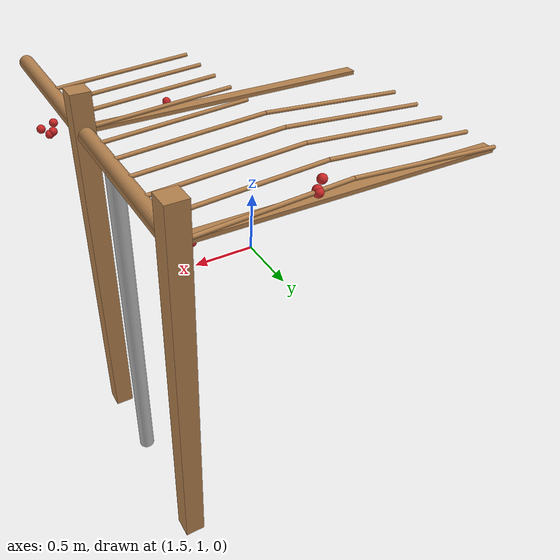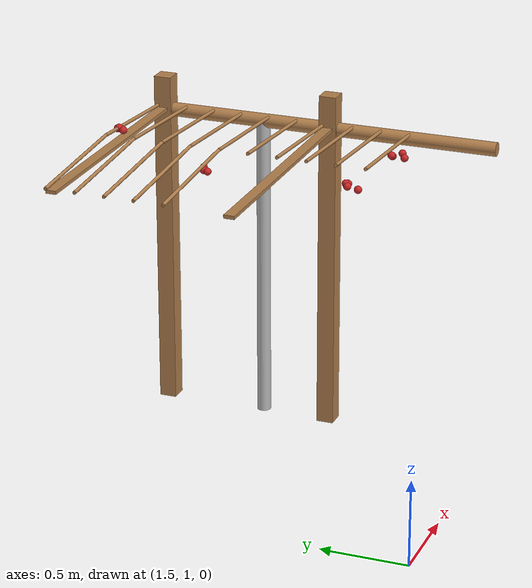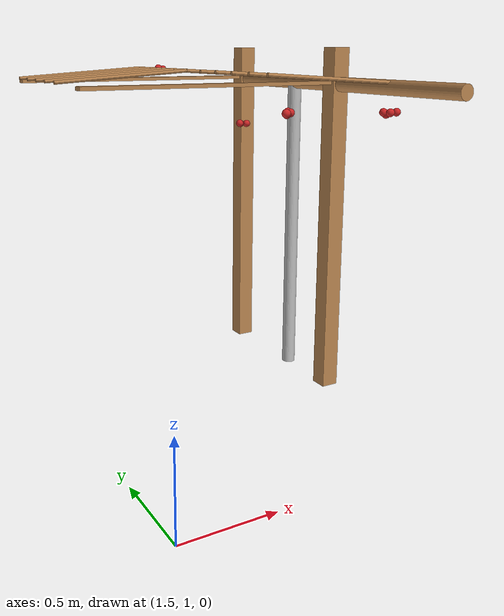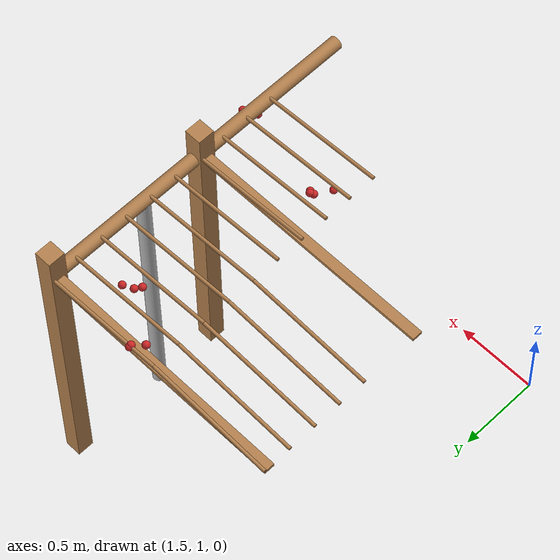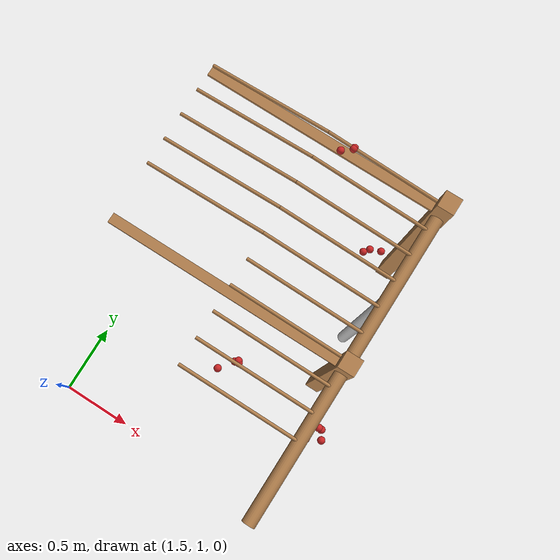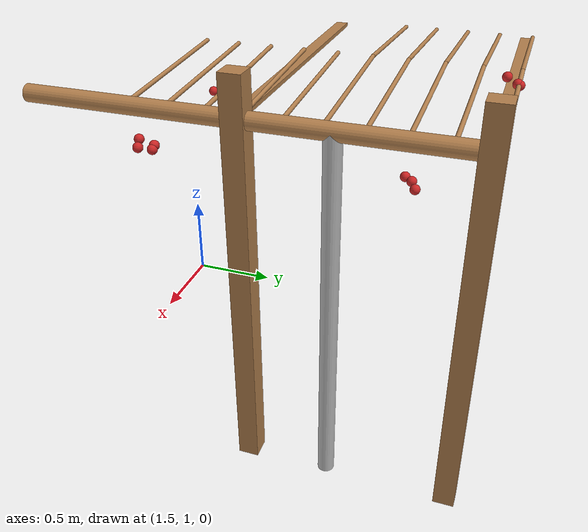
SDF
<sdf version="1.4">
 <model name="pergola">
  <include><name>post_24</name><pose>3.0 2.0 0 0 0 0</pose><uri>model://post</uri></include>
  <include><name>post_25</name><pose>3.0 3.0 0 0 0 0</pose><uri>model://post</uri></include>
  <link name="beam_13">
   <pose>2.25 2.0 1.81 0 0 0</pose>
   <collision name="collision"><geometry><box><size>1.5 0.06 0.02</size></box></geometry></collision>
   <visual name="visual">
    <geometry><box><size>1.5 0.06 0.02</size></box></geometry>
    <material><script><name>Gazebo/Wood</name></script></material>
   </visual>
   <inertial>
    <mass>5</mass>
    <inertia>
     <ixx>0.0016666666666666668</ixx>
     <ixy>0.0</ixy>
     <ixz>0.0</ixz>
     <iyy>0.9390000000000001</iyy>
     <iyz>0.0</iyz>
     <izz>0.9376666666666665</izz>
    </inertia>
   </inertial>
  </link>
  <link name="beam_14">
   <pose>2.25 3.0 1.81 0 0 0</pose>
   <collision name="collision"><geometry><box><size>1.5 0.06 0.02</size></box></geometry></collision>
   <visual name="visual">
    <geometry><box><size>1.5 0.06 0.02</size></box></geometry>
    <material><script><name>Gazebo/Wood</name></script></material>
   </visual>
   <inertial>
    <mass>5</mass>
    <inertia>
     <ixx>0.0016666666666666668</ixx>
     <ixy>0.0</ixy>
     <ixz>0.0</ixz>
     <iyy>0.9390000000000001</iyy>
     <iyz>0.0</iyz>
     <izz>0.9376666666666665</izz>
    </inertia>
   </inertial>
  </link>
  <include><name>tree_22</name><pose>3.0 2.4 0 0 0 0</pose><uri>model://tree_trunk</uri></include>
  <link name="baseBranch_21">
   <pose>3.0 1.5 1.8 1.5707963267948966 0 0</pose>
   <collision name="collision">
    <geometry><cylinder><radius>0.04</radius><length>0.94</length></cylinder></geometry>
   </collision>
   <visual name="visual">
    <geometry><cylinder><radius>0.04</radius><length>0.94</length></cylinder></geometry>
    <material><script><name>Gazebo/WoodFloor</name></script></material>
   </visual>
   <inertial>
    <mass>10</mass>
    <inertia>
     <ixx>0.7403333333333334</ixx>
     <ixy>0.0</ixy>
     <ixz>0.0</ixz>
     <iyy>0.7403333333333334</iyy>
     <iyz>0.0</iyz>
     <izz>0.008</izz>
    </inertia>
   </inertial>
  </link>
  <link name="baseBranch_22">
   <pose>3.0 2.5 1.8 1.5707963267948966 0 0</pose>
   <collision name="collision">
    <geometry><cylinder><radius>0.04</radius><length>0.94</length></cylinder></geometry>
   </collision>
   <visual name="visual">
    <geometry><cylinder><radius>0.04</radius><length>0.94</length></cylinder></geometry>
    <material><script><name>Gazebo/WoodFloor</name></script></material>
   </visual>
   <inertial>
    <mass>10</mass>
    <inertia>
     <ixx>0.7403333333333334</ixx>
     <ixy>0.0</ixy>
     <ixz>0.0</ixz>
     <iyy>0.7403333333333334</iyy>
     <iyz>0.0</iyz>
     <izz>0.008</izz>
    </inertia>
   </inertial>
  </link>
  <link name="vine_139">
   <pose>2.625 1.53 1.85 0 -1.5042281630190728 0</pose>
   <collision name="collision">
    <geometry><cylinder><radius>0.01</radius><length>0.7516648189186453</length></cylinder></geometry>
   </collision>
   <visual name="visual">
    <geometry><cylinder><radius>0.01</radius><length>0.7516648189186453</length></cylinder></geometry>
    <material><script><name>Gazebo/WoodFloor</name></script></material>
   </visual>
   <inertial>
    <mass>5</mass>
    <inertia>
     <ixx>0.23554166666666657</ixx>
     <ixy>0.0</ixy>
     <ixz>0.0</ixz>
     <iyy>0.23554166666666657</iyy>
     <iyz>0.0</iyz>
     <izz>0.00025</izz>
    </inertia>
   </inertial>
  </link>
  <link name="vine_141">
   <pose>2.625 1.6966666666666665 1.85 0 -1.5042281630190728 0</pose>
   <collision name="collision">
    <geometry><cylinder><radius>0.01</radius><length>0.7516648189186453</length></cylinder></geometry>
   </collision>
   <visual name="visual">
    <geometry><cylinder><radius>0.01</radius><length>0.7516648189186453</length></cylinder></geometry>
    <material><script><name>Gazebo/WoodFloor</name></script></material>
   </visual>
   <inertial>
    <mass>5</mass>
    <inertia>
     <ixx>0.23554166666666657</ixx>
     <ixy>0.0</ixy>
     <ixz>0.0</ixz>
     <iyy>0.23554166666666657</iyy>
     <iyz>0.0</iyz>
     <izz>0.00025</izz>
    </inertia>
   </inertial>
  </link>
  <link name="vine_143">
   <pose>2.625 1.8633333333333333 1.85 0 -1.5042281630190728 0</pose>
   <collision name="collision">
    <geometry><cylinder><radius>0.01</radius><length>0.7516648189186453</length></cylinder></geometry>
   </collision>
   <visual name="visual">
    <geometry><cylinder><radius>0.01</radius><length>0.7516648189186453</length></cylinder></geometry>
    <material><script><name>Gazebo/WoodFloor</name></script></material>
   </visual>
   <inertial>
    <mass>5</mass>
    <inertia>
     <ixx>0.23554166666666657</ixx>
     <ixy>0.0</ixy>
     <ixz>0.0</ixz>
     <iyy>0.23554166666666657</iyy>
     <iyz>0.0</iyz>
     <izz>0.00025</izz>
    </inertia>
   </inertial>
  </link>
  <link name="vine_145">
   <pose>2.625 2.03 1.85 0 -1.5042281630190728 0</pose>
   <collision name="collision">
    <geometry><cylinder><radius>0.01</radius><length>0.7516648189186453</length></cylinder></geometry>
   </collision>
   <visual name="visual">
    <geometry><cylinder><radius>0.01</radius><length>0.7516648189186453</length></cylinder></geometry>
    <material><script><name>Gazebo/WoodFloor</name></script></material>
   </visual>
   <inertial>
    <mass>5</mass>
    <inertia>
     <ixx>0.23554166666666657</ixx>
     <ixy>0.0</ixy>
     <ixz>0.0</ixz>
     <iyy>0.23554166666666657</iyy>
     <iyz>0.0</iyz>
     <izz>0.00025</izz>
    </inertia>
   </inertial>
  </link>
  <link name="vine_147">
   <pose>2.625 2.1966666666666663 1.85 0 -1.5042281630190728 0</pose>
   <collision name="collision">
    <geometry><cylinder><radius>0.01</radius><length>0.7516648189186453</length></cylinder></geometry>
   </collision>
   <visual name="visual">
    <geometry><cylinder><radius>0.01</radius><length>0.7516648189186453</length></cylinder></geometry>
    <material><script><name>Gazebo/WoodFloor</name></script></material>
   </visual>
   <inertial>
    <mass>5</mass>
    <inertia>
     <ixx>0.23554166666666657</ixx>
     <ixy>0.0</ixy>
     <ixz>0.0</ixz>
     <iyy>0.23554166666666657</iyy>
     <iyz>0.0</iyz>
     <izz>0.00025</izz>
    </inertia>
   </inertial>
  </link>
  <link name="vine_148">
   <pose>1.875 2.363333333333333 1.85 0 1.5042281630190728 0</pose>
   <collision name="collision">
    <geometry><cylinder><radius>0.01</radius><length>0.7516648189186453</length></cylinder></geometry>
   </collision>
   <visual name="visual">
    <geometry><cylinder><radius>0.01</radius><length>0.7516648189186453</length></cylinder></geometry>
    <material><script><name>Gazebo/WoodFloor</name></script></material>
   </visual>
   <inertial>
    <mass>5</mass>
    <inertia>
     <ixx>0.23554166666666657</ixx>
     <ixy>0.0</ixy>
     <ixz>0.0</ixz>
     <iyy>0.23554166666666657</iyy>
     <iyz>0.0</iyz>
     <izz>0.00025</izz>
    </inertia>
   </inertial>
  </link>
  <link name="vine_149">
   <pose>2.625 2.363333333333333 1.85 0 -1.5042281630190728 0</pose>
   <collision name="collision">
    <geometry><cylinder><radius>0.01</radius><length>0.7516648189186453</length></cylinder></geometry>
   </collision>
   <visual name="visual">
    <geometry><cylinder><radius>0.01</radius><length>0.7516648189186453</length></cylinder></geometry>
    <material><script><name>Gazebo/WoodFloor</name></script></material>
   </visual>
   <inertial>
    <mass>5</mass>
    <inertia>
     <ixx>0.23554166666666657</ixx>
     <ixy>0.0</ixy>
     <ixz>0.0</ixz>
     <iyy>0.23554166666666657</iyy>
     <iyz>0.0</iyz>
     <izz>0.00025</izz>
    </inertia>
   </inertial>
  </link>
  <link name="vine_150">
   <pose>1.875 2.53 1.85 0 1.5042281630190728 0</pose>
   <collision name="collision">
    <geometry><cylinder><radius>0.01</radius><length>0.7516648189186453</length></cylinder></geometry>
   </collision>
   <visual name="visual">
    <geometry><cylinder><radius>0.01</radius><length>0.7516648189186453</length></cylinder></geometry>
    <material><script><name>Gazebo/WoodFloor</name></script></material>
   </visual>
   <inertial>
    <mass>5</mass>
    <inertia>
     <ixx>0.23554166666666657</ixx>
     <ixy>0.0</ixy>
     <ixz>0.0</ixz>
     <iyy>0.23554166666666657</iyy>
     <iyz>0.0</iyz>
     <izz>0.00025</izz>
    </inertia>
   </inertial>
  </link>
  <link name="vine_151">
   <pose>2.625 2.53 1.85 0 -1.5042281630190728 0</pose>
   <collision name="collision">
    <geometry><cylinder><radius>0.01</radius><length>0.7516648189186453</length></cylinder></geometry>
   </collision>
   <visual name="visual">
    <geometry><cylinder><radius>0.01</radius><length>0.7516648189186453</length></cylinder></geometry>
    <material><script><name>Gazebo/WoodFloor</name></script></material>
   </visual>
   <inertial>
    <mass>5</mass>
    <inertia>
     <ixx>0.23554166666666657</ixx>
     <ixy>0.0</ixy>
     <ixz>0.0</ixz>
     <iyy>0.23554166666666657</iyy>
     <iyz>0.0</iyz>
     <izz>0.00025</izz>
    </inertia>
   </inertial>
  </link>
  <link name="vine_152">
   <pose>1.875 2.6966666666666663 1.85 0 1.5042281630190728 0</pose>
   <collision name="collision">
    <geometry><cylinder><radius>0.01</radius><length>0.7516648189186453</length></cylinder></geometry>
   </collision>
   <visual name="visual">
    <geometry><cylinder><radius>0.01</radius><length>0.7516648189186453</length></cylinder></geometry>
    <material><script><name>Gazebo/WoodFloor</name></script></material>
   </visual>
   <inertial>
    <mass>5</mass>
    <inertia>
     <ixx>0.23554166666666657</ixx>
     <ixy>0.0</ixy>
     <ixz>0.0</ixz>
     <iyy>0.23554166666666657</iyy>
     <iyz>0.0</iyz>
     <izz>0.00025</izz>
    </inertia>
   </inertial>
  </link>
  <link name="vine_153">
   <pose>2.625 2.6966666666666663 1.85 0 -1.5042281630190728 0</pose>
   <collision name="collision">
    <geometry><cylinder><radius>0.01</radius><length>0.7516648189186453</length></cylinder></geometry>
   </collision>
   <visual name="visual">
    <geometry><cylinder><radius>0.01</radius><length>0.7516648189186453</length></cylinder></geometry>
    <material><script><name>Gazebo/WoodFloor</name></script></material>
   </visual>
   <inertial>
    <mass>5</mass>
    <inertia>
     <ixx>0.23554166666666657</ixx>
     <ixy>0.0</ixy>
     <ixz>0.0</ixz>
     <iyy>0.23554166666666657</iyy>
     <iyz>0.0</iyz>
     <izz>0.00025</izz>
    </inertia>
   </inertial>
  </link>
  <link name="vine_154">
   <pose>1.875 2.863333333333333 1.85 0 1.5042281630190728 0</pose>
   <collision name="collision">
    <geometry><cylinder><radius>0.01</radius><length>0.7516648189186453</length></cylinder></geometry>
   </collision>
   <visual name="visual">
    <geometry><cylinder><radius>0.01</radius><length>0.7516648189186453</length></cylinder></geometry>
    <material><script><name>Gazebo/WoodFloor</name></script></material>
   </visual>
   <inertial>
    <mass>5</mass>
    <inertia>
     <ixx>0.23554166666666657</ixx>
     <ixy>0.0</ixy>
     <ixz>0.0</ixz>
     <iyy>0.23554166666666657</iyy>
     <iyz>0.0</iyz>
     <izz>0.00025</izz>
    </inertia>
   </inertial>
  </link>
  <link name="vine_155">
   <pose>2.625 2.863333333333333 1.85 0 -1.5042281630190728 0</pose>
   <collision name="collision">
    <geometry><cylinder><radius>0.01</radius><length>0.7516648189186453</length></cylinder></geometry>
   </collision>
   <visual name="visual">
    <geometry><cylinder><radius>0.01</radius><length>0.7516648189186453</length></cylinder></geometry>
    <material><script><name>Gazebo/WoodFloor</name></script></material>
   </visual>
   <inertial>
    <mass>5</mass>
    <inertia>
     <ixx>0.23554166666666657</ixx>
     <ixy>0.0</ixy>
     <ixz>0.0</ixz>
     <iyy>0.23554166666666657</iyy>
     <iyz>0.0</iyz>
     <izz>0.00025</izz>
    </inertia>
   </inertial>
  </link>
  <link name="vine_156">
   <pose>1.875 3.03 1.85 0 1.5042281630190728 0</pose>
   <collision name="collision">
    <geometry><cylinder><radius>0.01</radius><length>0.7516648189186453</length></cylinder></geometry>
   </collision>
   <visual name="visual">
    <geometry><cylinder><radius>0.01</radius><length>0.7516648189186453</length></cylinder></geometry>
    <material><script><name>Gazebo/WoodFloor</name></script></material>
   </visual>
   <inertial>
    <mass>5</mass>
    <inertia>
     <ixx>0.23554166666666657</ixx>
     <ixy>0.0</ixy>
     <ixz>0.0</ixz>
     <iyy>0.23554166666666657</iyy>
     <iyz>0.0</iyz>
     <izz>0.00025</izz>
    </inertia>
   </inertial>
  </link>
  <link name="vine_157">
   <pose>2.625 3.03 1.85 0 -1.5042281630190728 0</pose>
   <collision name="collision">
    <geometry><cylinder><radius>0.01</radius><length>0.7516648189186453</length></cylinder></geometry>
   </collision>
   <visual name="visual">
    <geometry><cylinder><radius>0.01</radius><length>0.7516648189186453</length></cylinder></geometry>
    <material><script><name>Gazebo/WoodFloor</name></script></material>
   </visual>
   <inertial>
    <mass>5</mass>
    <inertia>
     <ixx>0.23554166666666657</ixx>
     <ixy>0.0</ixy>
     <ixz>0.0</ixz>
     <iyy>0.23554166666666657</iyy>
     <iyz>0.0</iyz>
     <izz>0.00025</izz>
    </inertia>
   </inertial>
  </link>
  <link name="fruit_16">
   <pose>3.0307642870582745 1.5694179181709313 1.6701648570160226 0 0 0</pose>
   <collision name="fruit_collision_16"><geometry><sphere><radius>0.022</radius></sphere></geometry></collision>
   <visual name="visual">
    <geometry><sphere><radius>0.022</radius></sphere></geometry>
    <material><script><name>Gazebo/Red</name></script></material>
   </visual>
   <inertial>
    <mass>0.05</mass>
    <inertia>
     <ixx>9.679999999999999e-06</ixx>
     <ixy>0.0</ixy>
     <ixz>0.0</ixz>
     <iyy>9.679999999999999e-06</iyy>
     <iyz>0.0</iyz>
     <izz>9.679999999999999e-06</izz>
    </inertia>
   </inertial>
   <sensor name="fruit_contact_16" type="contact">
    <contact><collision>fruit_collision_16</collision></contact>
   </sensor>
  </link>
  <link name="fruit_58">
   <pose>2.425800161514853 1.6310729344887276 1.6852335047467608 0 0 0</pose>
   <collision name="fruit_collision_58"><geometry><sphere><radius>0.022</radius></sphere></geometry></collision>
   <visual name="visual">
    <geometry><sphere><radius>0.022</radius></sphere></geometry>
    <material><script><name>Gazebo/Red</name></script></material>
   </visual>
   <inertial>
    <mass>0.05</mass>
    <inertia>
     <ixx>9.679999999999999e-06</ixx>
     <ixy>0.0</ixy>
     <ixz>0.0</ixz>
     <iyy>9.679999999999999e-06</iyy>
     <iyz>0.0</iyz>
     <izz>9.679999999999999e-06</izz>
    </inertia>
   </inertial>
   <sensor name="fruit_contact_58" type="contact">
    <contact><collision>fruit_collision_58</collision></contact>
   </sensor>
  </link>
  <link name="fruit_78">
   <pose>2.761052858263131 2.6456080460175775 1.5406224651800757 0 0 0</pose>
   <collision name="fruit_collision_78"><geometry><sphere><radius>0.022</radius></sphere></geometry></collision>
   <visual name="visual">
    <geometry><sphere><radius>0.022</radius></sphere></geometry>
    <material><script><name>Gazebo/Red</name></script></material>
   </visual>
   <inertial>
    <mass>0.05</mass>
    <inertia>
     <ixx>9.679999999999999e-06</ixx>
     <ixy>0.0</ixy>
     <ixz>0.0</ixz>
     <iyy>9.679999999999999e-06</iyy>
     <iyz>0.0</iyz>
     <izz>9.679999999999999e-06</izz>
    </inertia>
   </inertial>
   <sensor name="fruit_contact_78" type="contact">
    <contact><collision>fruit_collision_78</collision></contact>
   </sensor>
  </link>
  <link name="fruit_105">
   <pose>2.359961483585595 2.9755968818752825 1.8755498275619278 0 0 0</pose>
   <collision name="fruit_collision_105"><geometry><sphere><radius>0.022</radius></sphere></geometry></collision>
   <visual name="visual">
    <geometry><sphere><radius>0.022</radius></sphere></geometry>
    <material><script><name>Gazebo/Red</name></script></material>
   </visual>
   <inertial>
    <mass>0.05</mass>
    <inertia>
     <ixx>9.679999999999999e-06</ixx>
     <ixy>0.0</ixy>
     <ixz>0.0</ixz>
     <iyy>9.679999999999999e-06</iyy>
     <iyz>0.0</iyz>
     <izz>9.679999999999999e-06</izz>
    </inertia>
   </inertial>
   <sensor name="fruit_contact_105" type="contact">
    <contact><collision>fruit_collision_105</collision></contact>
   </sensor>
  </link>
  <link name="fruit_125">
   <pose>2.786097098726361 2.6792870565482176 1.535554077734939 0 0 0</pose>
   <collision name="fruit_collision_125"><geometry><sphere><radius>0.022</radius></sphere></geometry></collision>
   <visual name="visual">
    <geometry><sphere><radius>0.022</radius></sphere></geometry>
    <material><script><name>Gazebo/Red</name></script></material>
   </visual>
   <inertial>
    <mass>0.05</mass>
    <inertia>
     <ixx>9.679999999999999e-06</ixx>
     <ixy>0.0</ixy>
     <ixz>0.0</ixz>
     <iyy>9.679999999999999e-06</iyy>
     <iyz>0.0</iyz>
     <izz>9.679999999999999e-06</izz>
    </inertia>
   </inertial>
   <sensor name="fruit_contact_125" type="contact">
    <contact><collision>fruit_collision_125</collision></contact>
   </sensor>
  </link>
  <link name="fruit_149">
   <pose>3.0594222670980638 1.6555994452760607 1.6651917949028847 0 0 0</pose>
   <collision name="fruit_collision_149"><geometry><sphere><radius>0.022</radius></sphere></geometry></collision>
   <visual name="visual">
    <geometry><sphere><radius>0.022</radius></sphere></geometry>
    <material><script><name>Gazebo/Red</name></script></material>
   </visual>
   <inertial>
    <mass>0.05</mass>
    <inertia>
     <ixx>9.679999999999999e-06</ixx>
     <ixy>0.0</ixy>
     <ixz>0.0</ixz>
     <iyy>9.679999999999999e-06</iyy>
     <iyz>0.0</iyz>
     <izz>9.679999999999999e-06</izz>
    </inertia>
   </inertial>
   <sensor name="fruit_contact_149" type="contact">
    <contact><collision>fruit_collision_149</collision></contact>
   </sensor>
  </link>
  <link name="fruit_170">
   <pose>2.48481465012363 1.7132459222714376 1.6725193826796263 0 0 0</pose>
   <collision name="fruit_collision_170"><geometry><sphere><radius>0.022</radius></sphere></geometry></collision>
   <visual name="visual">
    <geometry><sphere><radius>0.022</radius></sphere></geometry>
    <material><script><name>Gazebo/Red</name></script></material>
   </visual>
   <inertial>
    <mass>0.05</mass>
    <inertia>
     <ixx>9.679999999999999e-06</ixx>
     <ixy>0.0</ixy>
     <ixz>0.0</ixz>
     <iyy>9.679999999999999e-06</iyy>
     <iyz>0.0</iyz>
     <izz>9.679999999999999e-06</izz>
    </inertia>
   </inertial>
   <sensor name="fruit_contact_170" type="contact">
    <contact><collision>fruit_collision_170</collision></contact>
   </sensor>
  </link>
  <link name="fruit_229">
   <pose>2.4993743540054547 1.7263003087083721 1.6829596804604445 0 0 0</pose>
   <collision name="fruit_collision_229"><geometry><sphere><radius>0.022</radius></sphere></geometry></collision>
   <visual name="visual">
    <geometry><sphere><radius>0.022</radius></sphere></geometry>
    <material><script><name>Gazebo/Red</name></script></material>
   </visual>
   <inertial>
    <mass>0.05</mass>
    <inertia>
     <ixx>9.679999999999999e-06</ixx>
     <ixy>0.0</ixy>
     <ixz>0.0</ixz>
     <iyy>9.679999999999999e-06</iyy>
     <iyz>0.0</iyz>
     <izz>9.679999999999999e-06</izz>
    </inertia>
   </inertial>
   <sensor name="fruit_contact_229" type="contact">
    <contact><collision>fruit_collision_229</collision></contact>
   </sensor>
  </link>
  <link name="fruit_254">
   <pose>3.077742649811865 1.6549701776014079 1.6540195315093038 0 0 0</pose>
   <collision name="fruit_collision_254"><geometry><sphere><radius>0.022</radius></sphere></geometry></collision>
   <visual name="visual">
    <geometry><sphere><radius>0.022</radius></sphere></geometry>
    <material><script><name>Gazebo/Red</name></script></material>
   </visual>
   <inertial>
    <mass>0.05</mass>
    <inertia>
     <ixx>9.679999999999999e-06</ixx>
     <ixy>0.0</ixy>
     <ixz>0.0</ixz>
     <iyy>9.679999999999999e-06</iyy>
     <iyz>0.0</iyz>
     <izz>9.679999999999999e-06</izz>
    </inertia>
   </inertial>
   <sensor name="fruit_contact_254" type="contact">
    <contact><collision>fruit_collision_254</collision></contact>
   </sensor>
  </link>
  <link name="fruit_314">
   <pose>3.1059364486443406 1.6059748532144507 1.6676279575623636 0 0 0</pose>
   <collision name="fruit_collision_314"><geometry><sphere><radius>0.022</radius></sphere></geometry></collision>
   <visual name="visual">
    <geometry><sphere><radius>0.022</radius></sphere></geometry>
    <material><script><name>Gazebo/Red</name></script></material>
   </visual>
   <inertial>
    <mass>0.05</mass>
    <inertia>
     <ixx>9.679999999999999e-06</ixx>
     <ixy>0.0</ixy>
     <ixz>0.0</ixz>
     <iyy>9.679999999999999e-06</iyy>
     <iyz>0.0</iyz>
     <izz>9.679999999999999e-06</izz>
    </inertia>
   </inertial>
   <sensor name="fruit_contact_314" type="contact">
    <contact><collision>fruit_collision_314</collision></contact>
   </sensor>
  </link>
  <link name="fruit_316">
   <pose>2.5072806933938714 1.7166009645619282 1.6798542171559396 0 0 0</pose>
   <collision name="fruit_collision_316"><geometry><sphere><radius>0.022</radius></sphere></geometry></collision>
   <visual name="visual">
    <geometry><sphere><radius>0.022</radius></sphere></geometry>
    <material><script><name>Gazebo/Red</name></script></material>
   </visual>
   <inertial>
    <mass>0.05</mass>
    <inertia>
     <ixx>9.679999999999999e-06</ixx>
     <ixy>0.0</ixy>
     <ixz>0.0</ixz>
     <iyy>9.679999999999999e-06</iyy>
     <iyz>0.0</iyz>
     <izz>9.679999999999999e-06</izz>
    </inertia>
   </inertial>
   <sensor name="fruit_contact_316" type="contact">
    <contact><collision>fruit_collision_316</collision></contact>
   </sensor>
  </link>
  <link name="fruit_359">
   <pose>2.414959964416407 3.033574313450731 1.8612867147900694 0 0 0</pose>
   <collision name="fruit_collision_359"><geometry><sphere><radius>0.022</radius></sphere></geometry></collision>
   <visual name="visual">
    <geometry><sphere><radius>0.022</radius></sphere></geometry>
    <material><script><name>Gazebo/Red</name></script></material>
   </visual>
   <inertial>
    <mass>0.05</mass>
    <inertia>
     <ixx>9.679999999999999e-06</ixx>
     <ixy>0.0</ixy>
     <ixz>0.0</ixz>
     <iyy>9.679999999999999e-06</iyy>
     <iyz>0.0</iyz>
     <izz>9.679999999999999e-06</izz>
    </inertia>
   </inertial>
   <sensor name="fruit_contact_359" type="contact">
    <contact><collision>fruit_collision_359</collision></contact>
   </sensor>
  </link>
  <link name="fruit_375">
   <pose>2.8463812553020595 2.704903746263217 1.5306718153271652 0 0 0</pose>
   <collision name="fruit_collision_375"><geometry><sphere><radius>0.022</radius></sphere></geometry></collision>
   <visual name="visual">
    <geometry><sphere><radius>0.022</radius></sphere></geometry>
    <material><script><name>Gazebo/Red</name></script></material>
   </visual>
   <inertial>
    <mass>0.05</mass>
    <inertia>
     <ixx>9.679999999999999e-06</ixx>
     <ixy>0.0</ixy>
     <ixz>0.0</ixz>
     <iyy>9.679999999999999e-06</iyy>
     <iyz>0.0</iyz>
     <izz>9.679999999999999e-06</izz>
    </inertia>
   </inertial>
   <sensor name="fruit_contact_375" type="contact">
    <contact><collision>fruit_collision_375</collision></contact>
   </sensor>
  </link>
  <link name="fruit_378">
   <pose>2.414264297100147 3.0245166682822195 1.866420912358259 0 0 0</pose>
   <collision name="fruit_collision_378"><geometry><sphere><radius>0.022</radius></sphere></geometry></collision>
   <visual name="visual">
    <geometry><sphere><radius>0.022</radius></sphere></geometry>
    <material><script><name>Gazebo/Red</name></script></material>
   </visual>
   <inertial>
    <mass>0.05</mass>
    <inertia>
     <ixx>9.679999999999999e-06</ixx>
     <ixy>0.0</ixy>
     <ixz>0.0</ixz>
     <iyy>9.679999999999999e-06</iyy>
     <iyz>0.0</iyz>
     <izz>9.679999999999999e-06</izz>
    </inertia>
   </inertial>
   <sensor name="fruit_contact_378" type="contact">
    <contact><collision>fruit_collision_378</collision></contact>
   </sensor>
  </link>
 </model>
</sdf>
